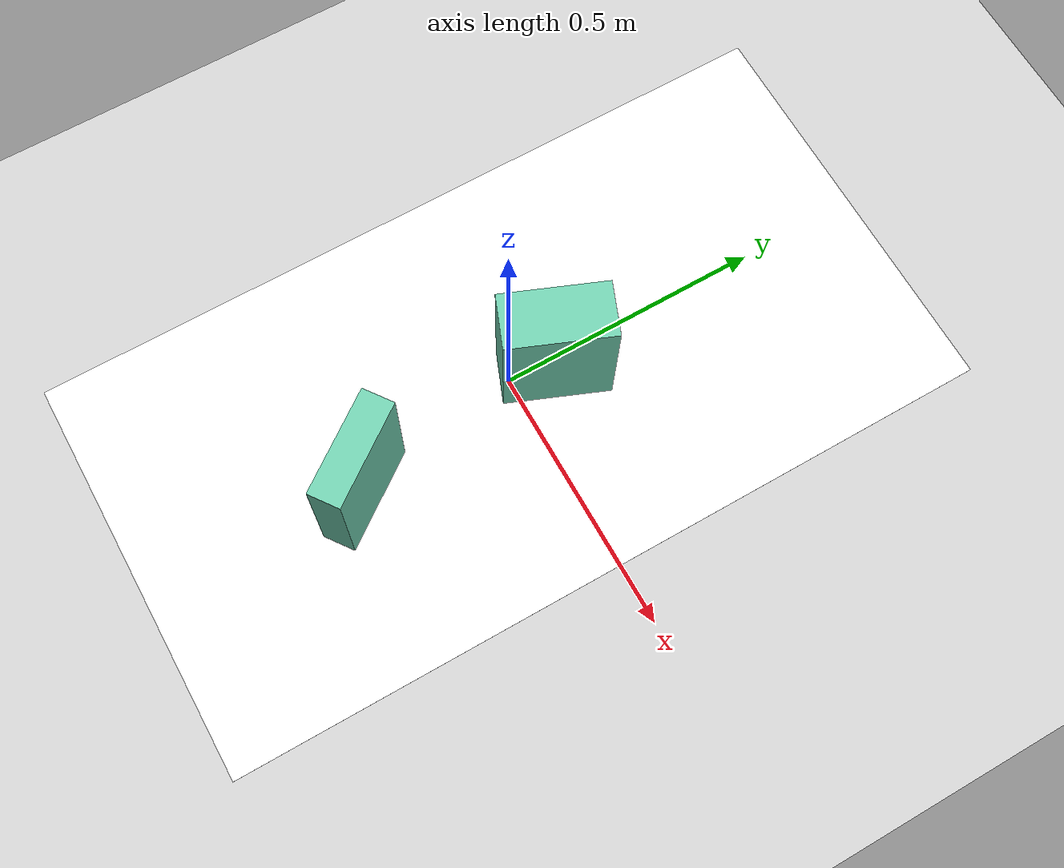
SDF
<?xml version="1.0" ?>
<sdf version="1.4">
  <world name="default">
    <gui>
      <camera name="user_camera">
        <pose>0 0 1.6 0 1.5708 -3.1415</pose>
      </camera>
    </gui>
    <scene>
      <ambient>0.5 0.5 0.5 1.0</ambient>
      <shadows>0</shadows>
    </scene>
    <include>
      <uri>model://ground_plane</uri>
    </include>
    <include>
      <uri>model://sun</uri>
    </include>
    <include>
      <uri>model://racetrack13</uri>
      <name>race_track13</name>
      <pose>0 0 0 0 0 0</pose>
    </include>

    <model name='obstacle1'>
    <pose frame=''>0.06 -0.32 0 0 0 5.3407075111</pose>
    <link name='Wall_0'>
      <collision name='Wall_0_Collision'>
        <geometry>
          <box>
            <size>0.195 0.06 0.25</size>
          </box>
        </geometry>
        <pose frame=''>0 0 0.125 0 -0 0</pose>
      </collision>
      <visual name='Wall_0_Visual'>
        <pose frame=''>0 0 0.125 0 -0 0</pose>
        <geometry>
          <box>
            <size>0.195 0.06 0.25</size>
          </box>
        </geometry>
        <material>
          <script>
            <uri>file://media/materials/scripts/gazebo.material</uri>
            <name>Gazebo/Grey</name>
          </script>
          <ambient>0.435294 0.796078 0.67451 1</ambient>
        </material>
        <meta>
          <layer>0</layer>
        </meta>
      </visual>
      <pose frame=''>0 0 0 0 -0 0</pose>
    </link>
    <static>1</static>
  </model>

    <model name='obstacle2'>
    <pose frame=''>0.0225 0.08 0 0 -0 1.1868238914</pose>
    <link name='Wall_0'>
      <collision name='Wall_0_Collision'>
        <geometry>
          <box>
            <size>0.195 0.1 0.25</size>
          </box>
        </geometry>
        <pose frame=''>0 0 0.125 0 -0 0</pose>
      </collision>
      <visual name='Wall_0_Visual'>
        <pose frame=''>0 0 0.125 0 -0 0</pose>
        <geometry>
          <box>
            <size>0.195 0.1 0.25</size>
          </box>
        </geometry>
        <material>
          <script>
            <uri>file://media/materials/scripts/gazebo.material</uri>
            <name>Gazebo/Grey</name>
          </script>
          <ambient>0.435294 0.796078 0.67451 1</ambient>
        </material>
        <meta>
          <layer>0</layer>
        </meta>
      </visual>
      <pose frame=''>0 0 0 0 -0 0</pose>
    </link>
    <static>1</static>
  </model>

  </world>
</sdf>

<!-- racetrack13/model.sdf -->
<sdf version='1.6'>
  <model name='race_track13'>
    <static>true</static>
    <link name='link'>
      <visual name='visual'>
        <geometry>
          <box>
            <size>0.774 1.462 0.000553</size>
          </box>
        </geometry>
        <material>
          <script>
            <name>RaceTrack13/track13</name>
	    <uri>model://racetrack13/materials/scripts</uri>
            <uri>model://racetrack13/materials/textures</uri>
          </script>
          <ambient>1 1 1 1</ambient>
          <diffuse>1 1 1 1</diffuse>
          <specular>0.01 0.01 0.01 1</specular>
          <emissive>1 1 1 1</emissive>
        </material>
        <transparency>0</transparency>
      </visual>
      <collision name='collision'>
        <geometry>
          <box>
            <size>0.774 1.462 0.000553</size>
          </box>
        </geometry>
	<surface>
          <friction>
            <ode>
              <mu>100</mu>
              <mu2>50</mu2>
            </ode>
          </friction>
        </surface>
      </collision>
    </link>
  </model>
</sdf>
